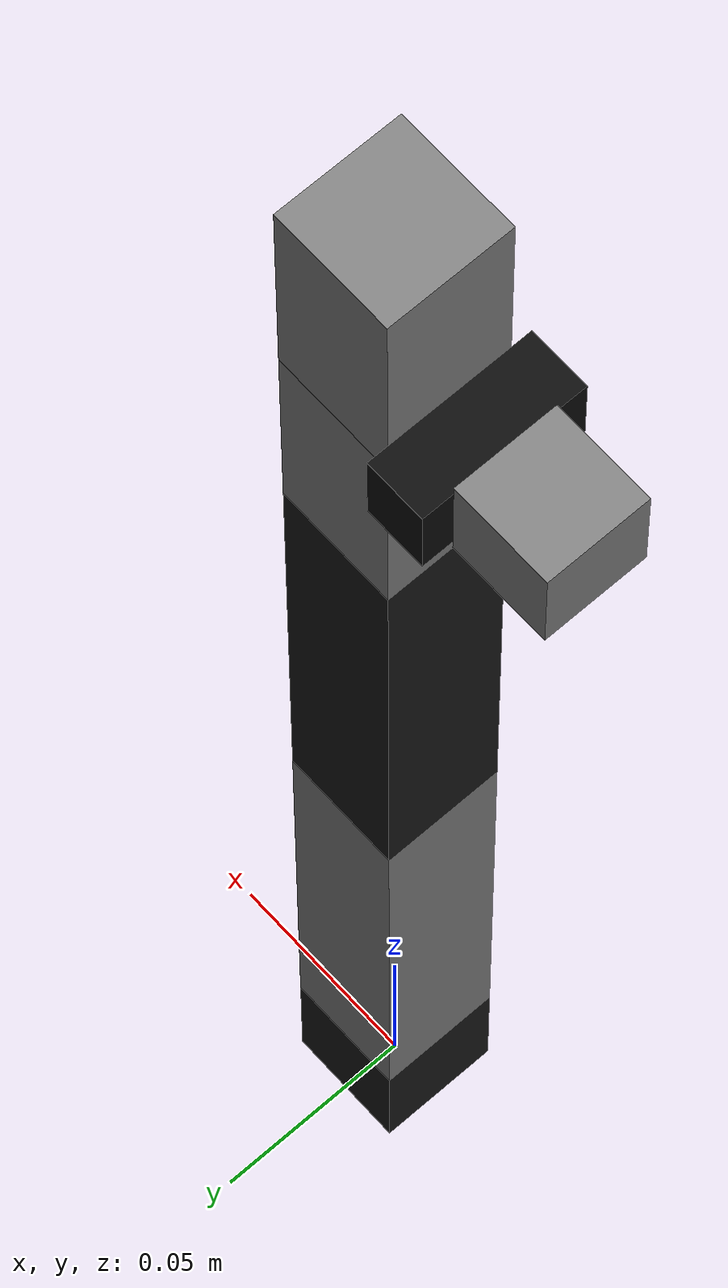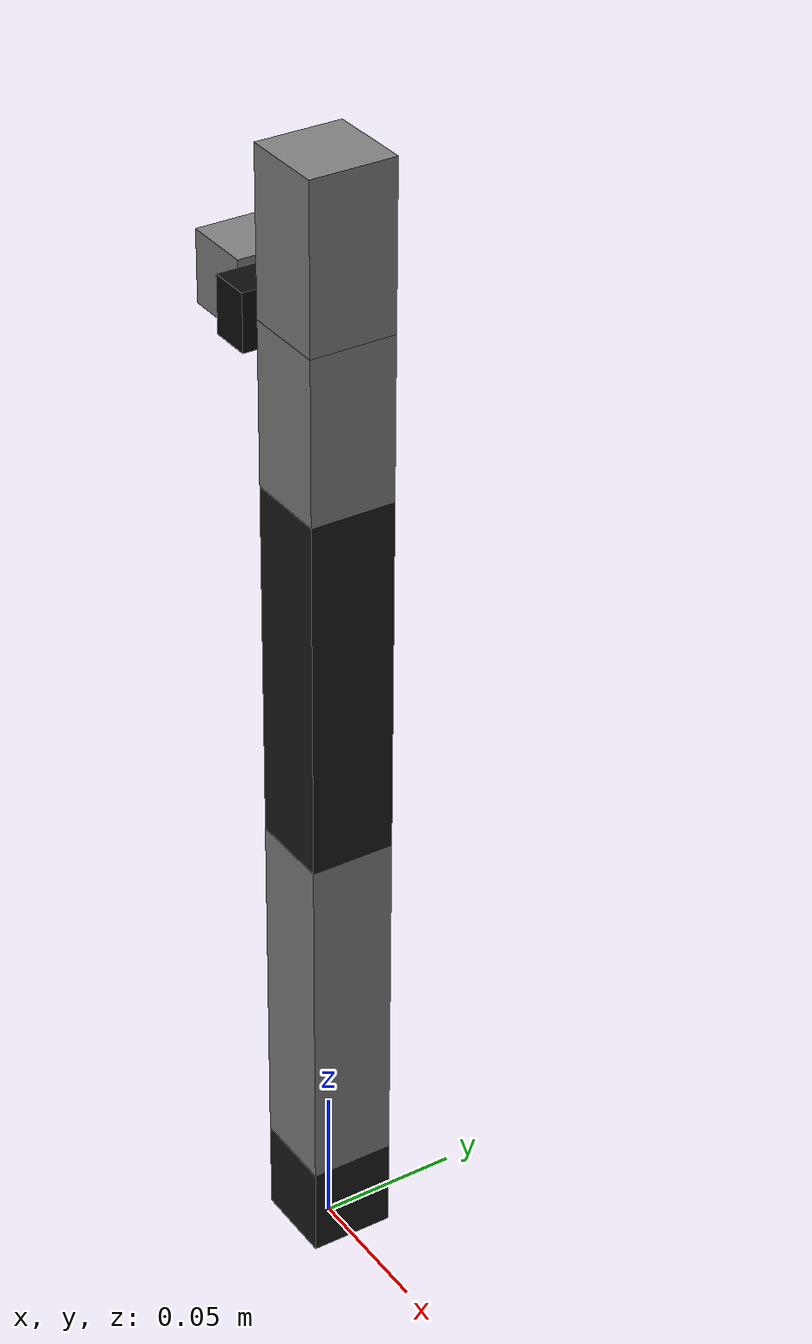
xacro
<?xml version="1.0"?>
<robot xmlns:xacro="http://www.ros.org/wiki/xacro" name="robot_arm_moveit">
    <xacro:arg name="initial_positions_file" default="initial_positions.yaml" />

    <!-- Import robot_arm_moveit urdf file -->
    <xacro:include filename="$(find robot_description)/urdf/robot_arm_moveit.urdf" />

    <!-- Import control_xacro -->
    <xacro:include filename="robot_arm_moveit.ros2_control.xacro" />

    <xacro:robot_arm_moveit_ros2_control name="FakeSystem" initial_positions_file="$(arg initial_positions_file)"/>

</robot>

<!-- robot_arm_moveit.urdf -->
<robot name="robot_arm_moveit">
  <!--
    Standalone arm URDF for MoveIt.
    Geometry, joint names, and joint limits are aligned with:
    - src/robot_description/urdf/model/robot.arm.xacro
    - src/robot_arm/robot_arm/kinematics.py
  -->

  <material name="dark_grey">
    <color rgba="0.1 0.1 0.1 1.0"/>
  </material>
  <material name="grey">
    <color rgba="0.5 0.5 0.5 1.0"/>
  </material>
  <material name="black">
    <color rgba="0.05 0.05 0.05 1.0"/>
  </material>

  <!-- IK origin: bottom of the arm base column -->
  <link name="base_link"/>

  <joint name="arm_base_joint" type="revolute">
    <parent link="base_link"/>
    <child link="arm_link0"/>
    <origin xyz="0 0 0" rpy="0 0 0"/>
    <axis xyz="0 0 1"/>
    <limit lower="-3.141592653589793" upper="3.141592653589793" effort="10" velocity="3.14"/>
  </joint>

  <link name="arm_link0">
    <visual>
      <origin xyz="0 0 0.0169324" rpy="0 0 0"/>
      <geometry>
        <box size="0.03 0.03 0.0338648"/>
      </geometry>
      <material name="dark_grey"/>
    </visual>
    <collision>
      <origin xyz="0 0 0.0169324" rpy="0 0 0"/>
      <geometry>
        <box size="0.03 0.03 0.0338648"/>
      </geometry>
    </collision>
    <inertial>
      <origin xyz="0 0 0.0169324" rpy="0 0 0"/>
      <mass value="0.3"/>
      <inertia ixx="5.1170616976e-05" ixy="0" ixz="0" iyy="5.1170616976e-05" iyz="0" izz="4.5e-05"/>
    </inertial>
  </link>

  <joint name="arm_shoulder_joint" type="revolute">
    <parent link="arm_link0"/>
    <child link="arm_link1"/>
    <origin xyz="0 0 0.0338648" rpy="0 0 0"/>
    <axis xyz="0 1 0"/>
    <limit lower="-1.5707963267948966" upper="3.141592653589793" effort="10" velocity="3.14"/>
  </joint>

  <link name="arm_link1">
    <visual>
      <origin xyz="0 0 0.064708" rpy="0 0 0"/>
      <geometry>
        <box size="0.03 0.03 0.129416"/>
      </geometry>
      <material name="grey"/>
    </visual>
    <collision>
      <origin xyz="0 0 0.064708" rpy="0 0 0"/>
      <geometry>
        <box size="0.03 0.03 0.129416"/>
      </geometry>
    </collision>
    <inertial>
      <origin xyz="0 0 0.064708" rpy="0 0 0"/>
      <mass value="0.4"/>
      <inertia ixx="0.0005882833685333334" ixy="0" ixz="0" iyy="0.0005882833685333334" iyz="0" izz="6e-05"/>
    </inertial>
  </link>

  <joint name="arm_elbow_joint" type="revolute">
    <parent link="arm_link1"/>
    <child link="arm_link2"/>
    <origin xyz="0 0 0.129416" rpy="0 0 0"/>
    <axis xyz="0 1 0"/>
    <limit lower="0" upper="3.141592653589793" effort="10" velocity="3.14"/>
  </joint>

  <link name="arm_link2">
    <visual>
      <origin xyz="0 0 0.064722" rpy="0 0 0"/>
      <geometry>
        <box size="0.03 0.03 0.129444"/>
      </geometry>
      <material name="dark_grey"/>
    </visual>
    <collision>
      <origin xyz="0 0 0.064722" rpy="0 0 0"/>
      <geometry>
        <box size="0.03 0.03 0.129444"/>
      </geometry>
    </collision>
    <inertial>
      <origin xyz="0 0 0.064722" rpy="0 0 0"/>
      <mass value="0.3"/>
      <inertia ixx="0.0004413937284" ixy="0" ixz="0" iyy="0.0004413937284" iyz="0" izz="4.5e-05"/>
    </inertial>
  </link>

  <joint name="arm_wrist_joint" type="revolute">
    <parent link="arm_link2"/>
    <child link="arm_link3"/>
    <origin xyz="0 0 0.129444" rpy="0 0 0"/>
    <axis xyz="0 1 0"/>
    <limit lower="0" upper="3.141592653589793" effort="10" velocity="3.14"/>
  </joint>

  <link name="arm_link3">
    <visual>
      <origin xyz="0 0 0.0284662" rpy="0 0 0"/>
      <geometry>
        <box size="0.03 0.03 0.0569324"/>
      </geometry>
      <material name="grey"/>
    </visual>
    <collision>
      <origin xyz="0 0 0.0284662" rpy="0 0 0"/>
      <geometry>
        <box size="0.03 0.03 0.0569324"/>
      </geometry>
    </collision>
    <inertial>
      <origin xyz="0 0 0.0284662" rpy="0 0 0"/>
      <mass value="0.1"/>
      <inertia ixx="3.4510818081333334e-05" ixy="0" ixz="0" iyy="3.4510818081333334e-05" iyz="0" izz="1.5e-05"/>
    </inertial>
  </link>

  <joint name="arm_tool_rotate_joint" type="revolute">
    <parent link="arm_link3"/>
    <child link="arm_link4"/>
    <origin xyz="0 0 0.0569324" rpy="0 0 0"/>
    <axis xyz="0 0 1"/>
    <limit lower="-3.141592653589793" upper="3.141592653589793" effort="10" velocity="3.14"/>
  </joint>

  <link name="arm_link4">
    <visual>
      <origin xyz="0 0 0.0284662" rpy="0 0 0"/>
      <geometry>
        <box size="0.03 0.03 0.0569324"/>
      </geometry>
      <material name="grey"/>
    </visual>
    <collision>
      <origin xyz="0 0 0.0284662" rpy="0 0 0"/>
      <geometry>
        <box size="0.03 0.03 0.0569324"/>
      </geometry>
    </collision>
    <inertial>
      <origin xyz="0 0 0.0284662" rpy="0 0 0"/>
      <mass value="0.1"/>
      <inertia ixx="3.4510818081333334e-05" ixy="0" ixz="0" iyy="3.4510818081333334e-05" iyz="0" izz="1.5e-05"/>
    </inertial>
  </link>

  <joint name="virtual_tool_roll_joint" type="revolute">
    <parent link="arm_link4"/>
    <child link="tool_roll_link"/>
    <origin xyz="0 0 0.0569324" rpy="0 0 0"/>
    <axis xyz="1 0 0"/>
    <limit lower="-3.141592653589793" upper="3.141592653589793" effort="1" velocity="3.14"/>
  </joint>

  <link name="tool_roll_link"/>

  <joint name="virtual_tool_pitch_joint" type="revolute">
    <parent link="tool_roll_link"/>
    <child link="tool_pitch_link"/>
    <origin xyz="0 0 0" rpy="0 0 0"/>
    <axis xyz="0 1 0"/>
    <limit lower="-3.141592653589793" upper="3.141592653589793" effort="1" velocity="3.14"/>
  </joint>

  <link name="tool_pitch_link"/>

  <joint name="virtual_tool_yaw_joint" type="revolute">
    <parent link="tool_pitch_link"/>
    <child link="tool0"/>
    <origin xyz="0 0 0" rpy="0 0 0"/>
    <axis xyz="0 0 1"/>
    <limit lower="-3.141592653589793" upper="3.141592653589793" effort="1" velocity="3.14"/>
  </joint>

  <link name="tool0"/>

  <joint name="camera_bracket_joint" type="fixed">
    <parent link="arm_link4"/>
    <child link="camera_bracket"/>
    <origin xyz="-0.0225 0 0" rpy="0 -1.5707963267948966 0"/>
  </joint>

  <link name="camera_bracket">
    <visual>
      <origin xyz="0 0 0" rpy="0 0 0"/>
      <geometry>
        <box size="0.02 0.04 0.015"/>
      </geometry>
      <material name="black"/>
    </visual>
    <collision>
      <origin xyz="0 0 0" rpy="0 0 0"/>
      <geometry>
        <box size="0.02 0.04 0.015"/>
      </geometry>
    </collision>
    <inertial>
      <origin xyz="0 0 0" rpy="0 0 0"/>
      <mass value="0.02"/>
      <inertia ixx="3.041666666666667e-06" ixy="0" ixz="0" iyy="1.0416666666666667e-06" iyz="0" izz="3.3333333333333337e-06"/>
    </inertial>
  </link>

  <joint name="camera_joint" type="fixed">
    <parent link="camera_bracket"/>
    <child link="camera_link"/>
    <origin xyz="0 0 0.02" rpy="0 0 0"/>
  </joint>

  <link name="camera_link">
    <visual>
      <origin xyz="0 0 0" rpy="0 0 0"/>
      <geometry>
        <box size="0.025 0.025 0.025"/>
      </geometry>
      <material name="grey"/>
    </visual>
    <collision>
      <origin xyz="0 0 0" rpy="0 0 0"/>
      <geometry>
        <box size="0.025 0.025 0.025"/>
      </geometry>
    </collision>
    <inertial>
      <origin xyz="0 0 0" rpy="0 0 0"/>
      <mass value="0.03"/>
      <inertia ixx="3.1250000000000006e-06" ixy="0" ixz="0" iyy="3.1250000000000006e-06" iyz="0" izz="3.1250000000000006e-06"/>
    </inertial>
  </link>

  <joint name="camera_optical_joint" type="fixed">
    <parent link="camera_link"/>
    <child link="camera_optical_link"/>
    <origin xyz="0 0 0" rpy="-1.570795 0 -1.570795"/>
  </joint>

  <link name="camera_optical_link"/>
</robot>
